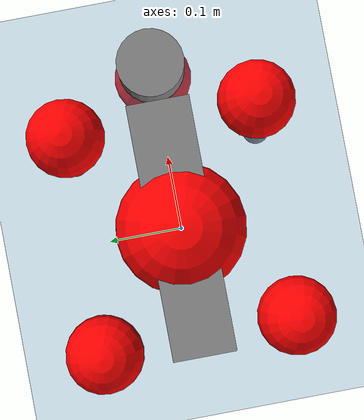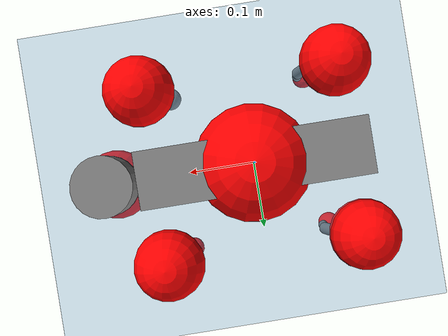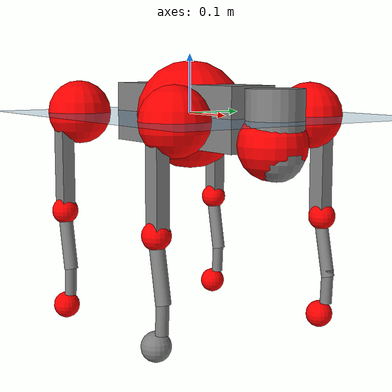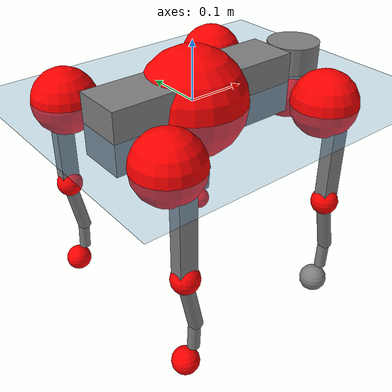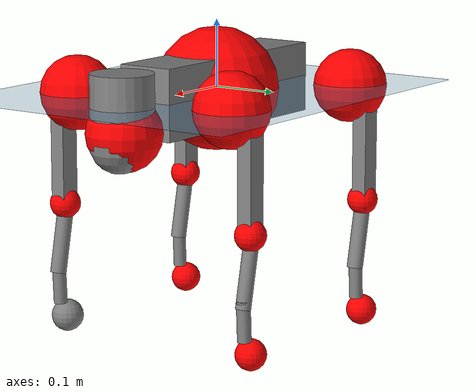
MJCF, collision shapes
<mujoco model="go2">
  <compiler angle="radian" assetdir="assets" balanceinertia="true" inertiafromgeom="false"/>

  <option timestep="0.005" density="1.2" viscosity="2e-05"/>

  <size nkey="1"/>

  <visual>
    <quality shadowsize="8192"/>
    <map shadowclip="0.5"/>
  </visual>

  <default>
    <default class="/">
      <geom contype="0" conaffinity="0" group="1" solref="-1000 -80"/>
      <site size="0.01 0.005 0.005" group="5"/>
      <general forcelimited="true" biastype="affine" gainprm="20" biasprm="0 -20 -0.5"/>
      <default class="go2">
        <joint armature="0.01" damping="0.01" frictionloss="0.2"/>
        <geom condim="1" margin="0.001"/>
        <default class="visual">
          <geom type="mesh" group="2"/>
        </default>
        <default class="collision">
          <geom group="3"/>
          <default class="foot">
            <geom size="0.022 0 0" condim="6" priority="1" friction="0.8 0.02 0.01" solimp="0.015 1 0.022"/>
          </default>
        </default>
        <default class="reward_collision_sphere">
          <geom group="5" rgba="1 0 0 1"/>
        </default>
      </default>
    </default>
  </default>

  <asset>
    <texture type="skybox" colorspace="auto" name="//unnamed_texture_0" builtin="gradient" rgb1="0.95 0.95 0.95" rgb2="0.95 0.95 0.95" width="100" height="600"/>
    <texture type="2d" colorspace="auto" name="texplane" builtin="checker" rgb1="0.345 0.575 0.748" rgb2="0.345 0.575 0.748" markrgb="1 1 1" width="512" height="512"/>
    <material name="MatPlane" class="/" texture="texplane" texuniform="true" texrepeat="2 2" specular="0.9"/>
    <material name="metal" class="/" rgba="0.9 0.95 0.95 1"/>
    <material name="black" class="/" rgba="0 0 0 1"/>
    <material name="white" class="/"/>
    <material name="gray" class="/" rgba="0.671705 0.692426 0.77427 1"/>
    <mesh name="base_0" class="/" file="base_0.obj"/>
    <mesh name="base_1" class="/" file="base_1.obj"/>
    <mesh name="base_2" class="/" file="base_2.obj"/>
    <mesh name="base_3" class="/" file="base_3.obj"/>
    <mesh name="base_4" class="/" file="base_4.obj"/>
    <mesh name="hip_0" class="/" file="hip_0.obj"/>
    <mesh name="hip_1" class="/" file="hip_1.obj"/>
    <mesh name="thigh_0" class="/" file="thigh_0.obj"/>
    <mesh name="thigh_1" class="/" file="thigh_1.obj"/>
    <mesh name="thigh_mirror_0" class="/" file="thigh_mirror_0.obj"/>
    <mesh name="thigh_mirror_1" class="/" file="thigh_mirror_1.obj"/>
    <mesh name="calf_0" class="/" file="calf_0.obj"/>
    <mesh name="calf_1" class="/" file="calf_1.obj"/>
    <mesh name="calf_mirror_0" class="/" file="calf_mirror_0.obj"/>
    <mesh name="calf_mirror_1" class="/" file="calf_mirror_1.obj"/>
    <mesh name="foot" class="/" file="foot.obj"/>
  </asset>

  <worldbody>
    <geom name="floor" class="/" size="100 100 0.125" type="plane" group="0" material="MatPlane"/>
    <light name="toplight_shadow" class="/" pos="0 0 5" dir="0.0990148 0.0990148 -0.990148" type="directional" ambient="0.04 0.04 0.04" diffuse="0.55 0.55 0.55" specular="0.12 0.12 0.12"/>
    <light name="toplight_fill" class="/" pos="0 0 5" dir="0.0990148 0.0990148 -0.990148" type="directional" castshadow="false" ambient="0.04 0.04 0.04" diffuse="0.3 0.3 0.3" specular="0.08 0.08 0.08"/>
    <body name="trunk" childclass="go2" pos="0.000426631 0.000275138 -0.0023627" quat="1 8.21771e-05 -0.000132974 -4.10739e-05">
      <inertial pos="0.0157035 0.00460046 -0.00508914" quat="-0.00435646 0.714036 -0.0023016 0.700091" mass="5.55703" diaginertia="0.036038 0.216501 0.00864692"/>
      <joint name="//unnamed_joint_0" type="free" armature="0" damping="0" frictionloss="0"/>
      <geom name="//unnamed_geom_1" class="visual" material="black" mesh="base_0"/>
      <geom name="//unnamed_geom_2" class="visual" material="black" mesh="base_1"/>
      <geom name="//unnamed_geom_3" class="visual" material="black" mesh="base_2"/>
      <geom name="//unnamed_geom_4" class="visual" material="white" mesh="base_3"/>
      <geom name="//unnamed_geom_5" class="visual" material="gray" mesh="base_4"/>
      <geom name="trunk_1" class="collision" size="0.172774 0.042941 0.0523559" type="box"/>
      <geom name="trunk_2" class="collision" size="0.0459262 0.0413336" pos="0.224385 0 0.00807852" type="cylinder"/>
      <geom name="trunk_3" class="collision" size="0.0431706" pos="0.230683 0 -0.0484711"/>
      <geom name="//unnamed_geom_9" class="reward_collision_sphere" size="0.0918524"/>
      <geom name="//unnamed_geom_10" class="reward_collision_sphere" size="0.0551114" pos="0.220448 0 -0.0363533"/>
      <site name="imu" pos="-0.0286312 0.00455073 0.0386367" size="0.00918524"/>
      <camera name="track" pos="0 -2.32081 0" quat="0.707107 0.707107 0 0" mode="trackcom"/>
      <camera name="ego_camera" pos="0.245642 0 0.0363533" quat="-0.5 -0.5 0.5 0.5"/>
      <body name="FL_hip" pos="0.152052 0.0538796 0.00133523" quat="1 -6.20845e-05 0.000230269 -0.000702066">
        <inertial pos="-0.00399932 0.00435781 0.000805988" quat="0.488178 0.522354 0.490926 0.497815" mass="0.54167" diaginertia="0.000272034 0.00126932 0.000168886"/>
        <joint name="FL_hip_joint" pos="0 0 0" axis="0.999998 0.000903205 -0.00172267" range="-1.06898 1.00034" armature="0.00901234" damping="0.0242851" frictionloss="0.190444"/>
        <geom name="//unnamed_geom_11" class="visual" material="metal" mesh="hip_0"/>
        <geom name="//unnamed_geom_12" class="visual" material="gray" mesh="hip_1"/>
        <geom name="//unnamed_geom_13" class="collision" size="0.0422521 0.0183705" pos="0 0.0928324 0" quat="0.707107 0.707107 0 0" type="cylinder"/>
        <geom name="//unnamed_geom_14" class="reward_collision_sphere" size="0.0551114" pos="0 0.0812284 0"/>
        <body name="FL_thigh" pos="-0.00172542 0.111747 0.00173201" quat="0.999997 0.000408121 1.7071e-05 0.00246846">
          <inertial pos="-0.00372859 -0.0309374 -0.028317" quat="0.831652 0.0835831 -0.0113136 0.548854" mass="0.895369" diaginertia="0.00184748 0.0115049 0.000298115"/>
          <joint name="FL_thigh_joint" pos="0 0 0" axis="0.000961491 0.999997 -0.0020748" stiffness="0.00624001" range="-1.56236 3.56269" armature="0.00712407" damping="0.0232635" frictionloss="0.176892"/>
          <geom name="//unnamed_geom_15" class="visual" material="metal" mesh="thigh_0"/>
          <geom name="//unnamed_geom_16" class="visual" material="gray" mesh="thigh_1"/>
          <geom name="//unnamed_geom_17" class="collision" size="0.0978228 0.0112519 0.0156149" pos="0 0 -0.0860362" quat="0.707107 0 0.707107 0" type="box"/>
          <body name="FL_calf" pos="0.00235703 0.0022386 -0.175001" quat="1 -0.000533656 0.000101059 -4.22394e-05">
            <inertial pos="0.00786025 -0.000891447 -0.112384" quat="0.7092 -0.00891772 -0.0036088 0.704942" mass="0.19201" diaginertia="0.000450586 0.00293747 1.78766e-05"/>
            <joint name="FL_calf_joint" pos="0 0 0" axis="-0.00322166 0.999989 -0.00336294" range="-2.82397 -0.872531" armature="0.00877623" damping="0.0188195" frictionloss="0.204821"/>
            <geom name="//unnamed_geom_18" class="visual" material="gray" mesh="calf_0"/>
            <geom name="//unnamed_geom_19" class="visual" material="black" mesh="calf_1"/>
            <geom name="FL_calf0" class="collision" size="0.0110223 0.0551114" pos="0.00629852 0 -0.0484711" quat="0.994493 0 -0.104807 0" type="cylinder"/>
            <geom name="//unnamed_geom_21" class="collision" size="0.0101038 0.029852" pos="0.0157463 0 -0.119562" quat="0.999688 0 0.0249974 0" type="cylinder"/>
            <geom name="//unnamed_geom_22" class="visual" pos="0 0 -0.172072" quat="1 0 0 0" material="black" mesh="foot"/>
            <geom name="FL_foot" class="foot" size="0.0185239" pos="-0.00157463 0 -0.172072"/>
            <geom name="//unnamed_geom_24" class="reward_collision_sphere" size="0.0229631"/>
            <geom name="//unnamed_geom_25" class="reward_collision_sphere" size="0.0229631" pos="-0.00157463 0 -0.172072"/>
            <site name="FL_foot" class="foot" pos="-0.00157463 0 -0.172072" size="0.00918524"/>
          </body>
        </body>
      </body>
      <body name="FR_hip" pos="0.156919 -0.0548619 0.000911975" quat="0.999999 -0.00105178 0.000679431 0.000534673">
        <inertial pos="-0.00598192 -9.52013e-05 -0.00243398" quat="0.511393 0.497111 0.495588 0.495732" mass="0.510439" diaginertia="0.000268802 0.00125259 0.000169091"/>
        <joint name="FR_hip_joint" pos="0 0 0" axis="0.999998 0.00208042 0.000566229" stiffness="0.0291339" range="-1.01093 0.999635" armature="0.00844586" damping="0.0246602" frictionloss="0.206215"/>
        <geom name="//unnamed_geom_26" class="visual" pos="0 3.0713e-09 1.31734e-07" quat="4.63268e-05 1 0 0" material="metal" mesh="hip_0"/>
        <geom name="//unnamed_geom_27" class="visual" pos="0 4.97894e-09 -3.25829e-07" quat="4.63268e-05 1 0 0" material="gray" mesh="hip_1"/>
        <geom name="//unnamed_geom_28" class="collision" size="0.0422521 0.0183705" pos="0 -0.0928324 0" quat="0.707107 0.707107 0 0" type="cylinder"/>
        <geom name="//unnamed_geom_29" class="reward_collision_sphere" size="0.0551114" pos="0 -0.0812284 0"/>
        <body name="FR_thigh" pos="-0.00189273 -0.1106 0.00533924" quat="1 0.000489485 -3.59982e-06 -0.000136147">
          <inertial pos="-0.00184177 0.0259663 -0.0300977" quat="0.545382 -0.0138403 0.0897058 0.833259" mass="0.924787" diaginertia="0.00181584 0.0123687 0.000304369"/>
          <joint name="FR_thigh_joint" pos="0 0 0" axis="-0.000949027 -1 0.000217506" range="-3.49723 1.61103" armature="0.0104668" damping="0" frictionloss="0.181991"/>
          <geom name="//unnamed_geom_30" class="visual" material="metal" mesh="thigh_mirror_0"/>
          <geom name="//unnamed_geom_31" class="visual" material="gray" mesh="thigh_mirror_1"/>
          <geom name="//unnamed_geom_32" class="collision" size="0.0978228 0.0112519 0.0156149" pos="0 0 -0.0860362" quat="0.707107 0 0.707107 0" type="box"/>
          <body name="FR_calf" pos="-0.00222277 -0.000592727 -0.1745" quat="0.999999 -0.000673109 0.00038643 0.0010729">
            <inertial pos="0.00482157 0.000538213 -0.114712" quat="0.705876 0.0029315 -0.00194114 0.708327" mass="0.175174" diaginertia="0.00041295 0.00286806 1.71018e-05"/>
            <joint name="FR_calf_joint" pos="0 0 0" axis="0.00839183 -0.999895 -0.0118455" range="0.884079 2.76963" armature="0.00823576" damping="0.0251237" frictionloss="0.164579"/>
            <geom name="//unnamed_geom_33" class="visual" material="gray" mesh="calf_mirror_0"/>
            <geom name="//unnamed_geom_34" class="visual" material="black" mesh="calf_mirror_1"/>
            <geom name="FR_calf0" class="collision" size="0.0119408 0.0551114" pos="0.00787314 0 -0.0484711" quat="0.995004 0 -0.0998334 0" type="cylinder"/>
            <geom name="//unnamed_geom_36" class="collision" size="0.0101038 0.029852" pos="0.0157463 0 -0.119562" quat="0.999688 0 0.0249974 0" type="cylinder"/>
            <geom name="//unnamed_geom_37" class="visual" pos="0 0 -0.172072" quat="1 0 0 0" material="black" mesh="foot"/>
            <geom name="FR_foot" class="foot" size="0.0239164" pos="-0.00157463 0 -0.172072"/>
            <geom name="//unnamed_geom_39" class="reward_collision_sphere" size="0.0229631"/>
            <geom name="//unnamed_geom_40" class="reward_collision_sphere" size="0.0229631" pos="-0.00157463 0 -0.172072"/>
            <site name="FR_foot" class="foot" pos="-0.00157463 0 -0.172072" size="0.00918524"/>
          </body>
        </body>
      </body>
      <body name="RL_hip" pos="-0.153022 0.0548925 -0.0030265" quat="1 0.000288323 0.000465009 -0.000685601">
        <inertial pos="0.0065619 9.23219e-05 0.000110418" quat="0.494775 0.50386 0.499759 0.501561" mass="0.545656" diaginertia="0.000252835 0.0012046 0.000162415"/>
        <joint name="RL_hip_joint" pos="0 0 0" axis="-0.999749 -0.0220964 0.0037081" range="-1.09652 1.00259" armature="0.00804716" damping="0.0117078" frictionloss="0.171183"/>
        <geom name="//unnamed_geom_41" class="visual" pos="1.78914e-10 0 3.50712e-08" quat="4.63268e-05 0 1 0" material="metal" mesh="hip_0"/>
        <geom name="//unnamed_geom_42" class="visual" pos="2.9004e-10 0 3.11032e-08" quat="4.63268e-05 0 1 0" material="gray" mesh="hip_1"/>
        <geom name="//unnamed_geom_43" class="collision" size="0.0422521 0.0183705" pos="0 0.0928324 0" quat="0.707107 0.707107 0 0" type="cylinder"/>
        <geom name="//unnamed_geom_44" class="reward_collision_sphere" size="0.0551114" pos="0 0.0812284 0"/>
        <body name="RL_thigh" pos="0.00105214 0.108888 0.00189474" quat="0.999998 -0.00152188 0.000712263 -0.000681659">
          <inertial pos="-0.00350768 -0.0315764 -0.0243623" quat="0.829925 0.0904403 -0.0227197 0.550027" mass="0.940559" diaginertia="0.00177754 0.0123627 0.000290721"/>
          <joint name="RL_thigh_joint" pos="0 0 0" axis="-0.0256272 0.999669 0.00220004" range="-0.564699 4.52795" armature="0.00914296" damping="0" frictionloss="0.177193"/>
          <geom name="//unnamed_geom_45" class="visual" material="metal" mesh="thigh_0"/>
          <geom name="//unnamed_geom_46" class="visual" material="gray" mesh="thigh_1"/>
          <geom name="//unnamed_geom_47" class="collision" size="0.0978228 0.0112519 0.0156149" pos="0 0 -0.0860362" quat="0.707107 0 0.707107 0" type="box"/>
          <body name="RL_calf" pos="-0.000418869 -0.00237018 -0.17368" quat="1 -0.000336192 9.54574e-05 -0.000373377">
            <inertial pos="0.00474483 -0.00284445 -0.115871" quat="0.708805 0.00456975 -0.00823377 0.705341" mass="0.186745" diaginertia="0.000468331 0.00320709 1.91615e-05"/>
            <joint name="RL_calf_joint" pos="0 0 0" axis="0.00292563 0.999982 -0.00520691" range="-2.8155 -0.854563" armature="0.00687201" damping="0.00217749" frictionloss="0.183858"/>
            <geom name="//unnamed_geom_48" class="visual" material="gray" mesh="calf_0"/>
            <geom name="//unnamed_geom_49" class="visual" material="black" mesh="calf_1"/>
            <geom name="RL_calf0" class="collision" size="0.0119408 0.0551114" pos="0.00787314 0 -0.0484711" quat="0.995004 0 -0.0998334 0" type="cylinder"/>
            <geom name="//unnamed_geom_51" class="collision" size="0.0101038 0.029852" pos="0.0157463 0 -0.119562" quat="0.999688 0 0.0249974 0" type="cylinder"/>
            <geom name="//unnamed_geom_52" class="visual" pos="0 0 -0.172072" quat="1 0 0 0" material="black" mesh="foot"/>
            <geom name="RL_foot" class="foot" size="0.0211953" pos="-0.00157463 0 -0.172072"/>
            <geom name="//unnamed_geom_54" class="reward_collision_sphere" size="0.0229631"/>
            <geom name="//unnamed_geom_55" class="reward_collision_sphere" size="0.0229631" pos="-0.00157463 0 -0.172072"/>
            <site name="RL_foot" class="foot" pos="-0.00157463 0 -0.172072" size="0.00918524"/>
          </body>
        </body>
      </body>
      <body name="RR_hip" pos="-0.147816 -0.0539171 0.00164899" quat="0.999996 -0.00153581 -0.00156536 -0.00169291">
        <inertial pos="0.00517592 -0.00450386 -0.00129907" quat="0.501089 0.498365 0.497222 0.503302" mass="0.517481" diaginertia="0.000264741 0.00127197 0.000151268"/>
        <joint name="RR_hip_joint" pos="0 0 0" axis="-0.999984 -0.00234397 0.00508126" range="-1.09535 1.03973" armature="0.00754844" damping="0.00824123" frictionloss="0.186064"/>
        <geom name="//unnamed_geom_56" class="visual" pos="-1.65997e-10 3.0713e-09 -9.66631e-08" quat="2.14617e-09 4.63268e-05 4.63268e-05 -1" material="metal" mesh="hip_0"/>
        <geom name="//unnamed_geom_57" class="visual" pos="-3.21988e-10 4.97894e-09 3.56932e-07" quat="2.14617e-09 4.63268e-05 4.63268e-05 -1" material="gray" mesh="hip_1"/>
        <geom name="//unnamed_geom_58" class="collision" size="0.0422521 0.0183705" pos="0 -0.0928324 0" quat="0.707107 0.707107 0 0" type="cylinder"/>
        <geom name="//unnamed_geom_59" class="reward_collision_sphere" size="0.0551114" pos="0 -0.0812284 0"/>
        <body name="RR_thigh" pos="0.000365849 -0.112635 -0.00275289" quat="1 0.000277895 0.000750717 0.000431195">
          <inertial pos="-0.00369712 0.0271133 -0.0268209" quat="0.552093 -0.0151775 0.0746936 0.830291" mass="0.948493" diaginertia="0.00181435 0.0122933 0.000312479"/>
          <joint name="RR_thigh_joint" pos="0 0 0" axis="0.000576586 -0.999975 -0.00699652" range="-4.52332 0.420914" armature="0.011321" damping="0" frictionloss="0.17258"/>
          <geom name="//unnamed_geom_60" class="visual" material="metal" mesh="thigh_mirror_0"/>
          <geom name="//unnamed_geom_61" class="visual" material="gray" mesh="thigh_mirror_1"/>
          <geom name="//unnamed_geom_62" class="collision" size="0.0978228 0.0112519 0.0156149" pos="0 0 -0.0860362" quat="0.707107 0 0.707107 0" type="box"/>
          <body name="RR_calf" pos="0.000321109 -0.00100891 -0.170734" quat="0.999999 8.11533e-05 -0.000280113 -0.00111203">
            <inertial pos="0.00418954 0.00281948 -0.114085" quat="0.703444 -0.0043787 0.000888526 0.710736" mass="0.185788" diaginertia="0.00046296 0.00311798 1.78505e-05"/>
            <joint name="RR_calf_joint" pos="0 0 0" axis="-0.00741078 -0.999967 0.00326904" stiffness="0.00885477" range="0.77877 2.74913" armature="0.0085922" damping="0.00346017" frictionloss="0.190995"/>
            <geom name="//unnamed_geom_63" class="visual" material="gray" mesh="calf_mirror_0"/>
            <geom name="//unnamed_geom_64" class="visual" material="black" mesh="calf_mirror_1"/>
            <geom name="RR_calf0" class="collision" size="0.0119408 0.0551114" pos="0.00787314 0 -0.0484711" quat="0.995004 0 -0.0998334 0" type="cylinder"/>
            <geom name="//unnamed_geom_66" class="collision" size="0.0101038 0.029852" pos="0.0157463 0 -0.119562" quat="0.999688 0 0.0249974 0" type="cylinder"/>
            <geom name="//unnamed_geom_67" class="visual" pos="0 0 -0.172072" quat="1 0 0 0" material="black" mesh="foot"/>
            <geom name="RR_foot" class="foot" size="0.0159207" pos="-0.00157463 0 -0.172072"/>
            <geom name="//unnamed_geom_69" class="reward_collision_sphere" size="0.0229631"/>
            <geom name="//unnamed_geom_70" class="reward_collision_sphere" size="0.0229631" pos="-0.00157463 0 -0.172072"/>
            <site name="RR_foot" class="foot" pos="-0.00157463 0 -0.172072" size="0.00918524"/>
          </body>
        </body>
      </body>
    </body>
  </worldbody>

  <contact>
    <pair class="/" geom1="floor" geom2="FL_foot" name="//unnamed_contact_0"/>
    <pair class="/" geom1="floor" geom2="FR_foot" name="//unnamed_contact_1"/>
    <pair class="/" geom1="floor" geom2="RL_foot" name="//unnamed_contact_2"/>
    <pair class="/" geom1="floor" geom2="RR_foot" name="//unnamed_contact_3"/>
  </contact>

  <actuator>
    <general name="FL_hip" class="/" joint="FL_hip_joint" forcerange="-22.8968 22.8968" gainprm="18.3477" biasprm="0 -18.3477 -0.468677"/>
    <general name="FL_thigh" class="/" joint="FL_thigh_joint" forcerange="-22.7151 22.7151" gainprm="18.3477" biasprm="0 -18.3477 -0.468677"/>
    <general name="FL_calf" class="/" joint="FL_calf_joint" forcerange="-42.5731 42.5731" gainprm="18.3477" biasprm="0 -18.3477 -0.468677"/>
    <general name="FR_hip" class="/" joint="FR_hip_joint" forcerange="-20.8237 20.8237" gainprm="18.3477" biasprm="0 -18.3477 -0.468677"/>
    <general name="FR_thigh" class="/" joint="FR_thigh_joint" forcerange="-21.3459 21.3459" gainprm="18.3477" biasprm="0 -18.3477 -0.468677"/>
    <general name="FR_calf" class="/" joint="FR_calf_joint" forcerange="-43.1138 43.1138" gainprm="18.3477" biasprm="0 -18.3477 -0.468677"/>
    <general name="RL_hip" class="/" joint="RL_hip_joint" forcerange="-19.9739 19.9739" gainprm="18.3477" biasprm="0 -18.3477 -0.468677"/>
    <general name="RL_thigh" class="/" joint="RL_thigh_joint" forcerange="-21.8592 21.8592" gainprm="18.3477" biasprm="0 -18.3477 -0.468677"/>
    <general name="RL_calf" class="/" joint="RL_calf_joint" forcerange="-46.0217 46.0217" gainprm="18.3477" biasprm="0 -18.3477 -0.468677"/>
    <general name="RR_hip" class="/" joint="RR_hip_joint" forcerange="-20.737 20.737" gainprm="18.3477" biasprm="0 -18.3477 -0.468677"/>
    <general name="RR_thigh" class="/" joint="RR_thigh_joint" forcerange="-23.413 23.413" gainprm="18.3477" biasprm="0 -18.3477 -0.468677"/>
    <general name="RR_calf" class="/" joint="RR_calf_joint" forcerange="-36.6271 36.6271" gainprm="18.3477" biasprm="0 -18.3477 -0.468677"/>
  </actuator>

  <sensor>
    <gyro site="imu" name="imu_angular_velocity"/>
    <velocimeter site="imu" name="imu_linear_velocity"/>
    <framelinvel objtype="site" objname="FL_foot" name="FL_foot_global_linear_velocity"/>
    <framelinvel objtype="site" objname="FR_foot" name="FR_foot_global_linear_velocity"/>
    <framelinvel objtype="site" objname="RL_foot" name="RL_foot_global_linear_velocity"/>
    <framelinvel objtype="site" objname="RR_foot" name="RR_foot_global_linear_velocity"/>
  </sensor>

  <keyframe>
    <key name="home" qpos="0 0 0.325 1 0 0 0 0.1 0.8 -1.5 -0.1 -0.8 1.5 -0.1 0.8 -1.5 0.1 -0.8 1.5"/>
  </keyframe>
</mujoco>
